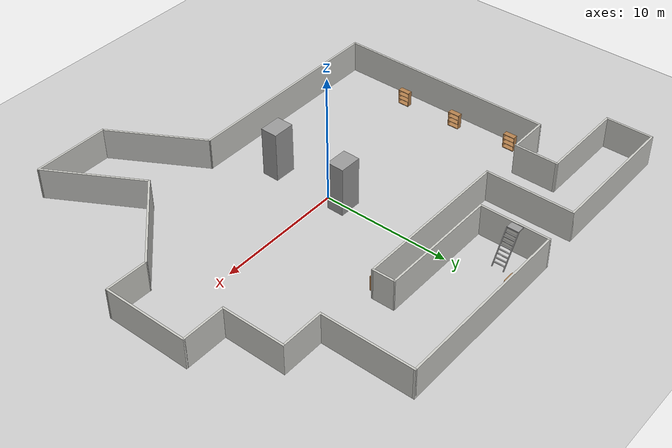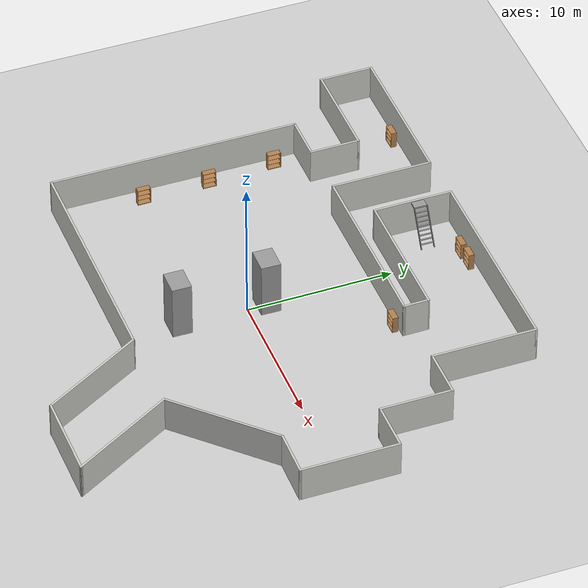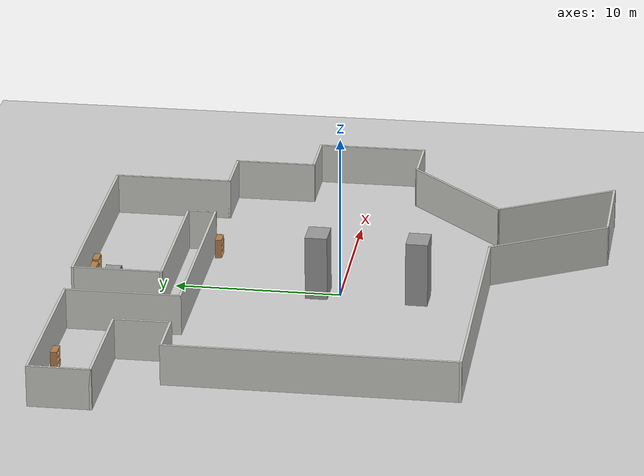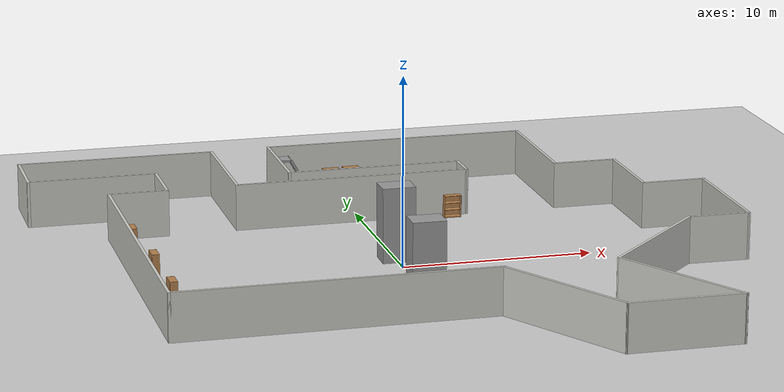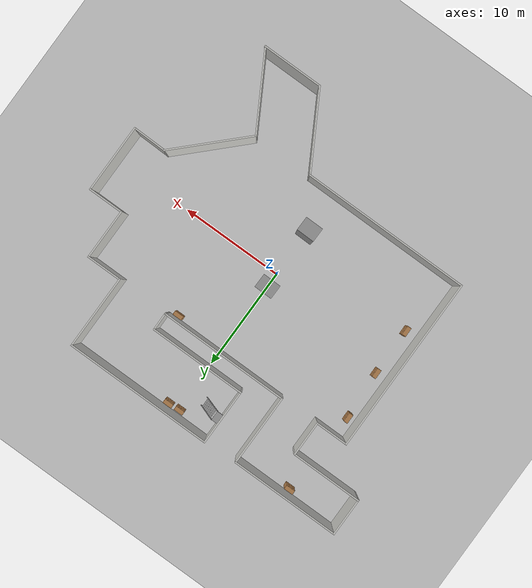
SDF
<sdf version="1.7">
 <world name="default">
  <light name="sun" type="directional">
   <pose>0 0 10 0 -0 0</pose>
   <diffuse>0.8 0.8 0.8 1</diffuse>
   <specular>0.2 0.2 0.2 1</specular>
   <attenuation>
    <range>1000</range>
    <constant>0.9</constant>
    <linear>0.01</linear>
    <quadratic>0.001</quadratic>
   </attenuation>
   <direction>-0.5 0.1 -0.9</direction>
   <spot><inner_angle>0</inner_angle><outer_angle>0</outer_angle><falloff>0</falloff></spot>
  </light>
  <model name="ground_plane">
   <static>1</static>
   <link name="link">
    <collision name="collision">
     <geometry><plane><normal>0 0 1</normal><size>100 100</size></plane></geometry>
     <surface>
      <contact><collide_bitmask>65535</collide_bitmask></contact>
      <friction><ode><mu>100</mu><mu2>50</mu2></ode></friction>
     </surface>
    </collision>
    <visual name="visual">
     <cast_shadows>0</cast_shadows>
     <geometry><plane><normal>0 0 1</normal><size>100 100</size></plane></geometry>
     <material>
      <script><uri>file://media/materials/scripts/gazebo.material</uri><name>Gazebo/Grey</name></script>
     </material>
    </visual>
   </link>
  </model>
  <gravity>0 0 -9.8</gravity>
  <magnetic_field>6e-06 2.3e-05 -4.2e-05</magnetic_field>
  <atmosphere type="adiabatic"/>
  <physics type="ode">
   <max_step_size>0.001</max_step_size>
   <real_time_factor>1</real_time_factor>
   <real_time_update_rate>1000</real_time_update_rate>
  </physics>
  <scene><ambient>0.4 0.4 0.4 1</ambient><background>0.7 0.7 0.7 1</background><shadows>1</shadows></scene>
  <spherical_coordinates>
   <surface_model>EARTH_WGS84</surface_model>
   <latitude_deg>0</latitude_deg>
   <longitude_deg>0</longitude_deg>
   <elevation>0</elevation>
   <heading_deg>0</heading_deg>
  </spherical_coordinates>
  <model name="real_room">
   <pose>0.048827 0.029436 0 0 -0 0</pose>
   <link name="Wall_38">
    <collision name="Wall_38_Collision">
     <geometry><box><size>9.5 0.15 2.5</size></box></geometry>
     <pose>0 0 1.25 0 -0 0</pose>
    </collision>
    <visual name="Wall_38_Visual">
     <pose>0 0 1.25 0 -0 0</pose>
     <geometry><box><size>9.5 0.15 2.5</size></box></geometry>
     <material>
      <script><uri>file://media/materials/scripts/gazebo.material</uri><name>Gazebo/CeilingTiled</name></script>
      <ambient>1 1 1 1</ambient>
     </material>
     <meta><layer>0</layer></meta>
    </visual>
    <pose>1.06462 10.1765 0 0 -0 3.14159</pose>
   </link>
   <link name="Wall_39">
    <collision name="Wall_39_Collision">
     <geometry><box><size>5.5 0.15 2.5</size></box></geometry>
     <pose>0 0 1.25 0 -0 0</pose>
    </collision>
    <visual name="Wall_39_Visual">
     <pose>0 0 1.25 0 -0 0</pose>
     <geometry><box><size>5.5 0.15 2.5</size></box></geometry>
     <material>
      <script><uri>file://media/materials/scripts/gazebo.material</uri><name>Gazebo/CeilingTiled</name></script>
      <ambient>1 1 1 1</ambient>
     </material>
     <meta><layer>0</layer></meta>
    </visual>
    <pose>-3.61037 12.8515 0 0 -0 1.5708</pose>
   </link>
   <link name="Wall_40">
    <collision name="Wall_40_Collision">
     <geometry><box><size>14.5 0.15 2.5</size></box></geometry>
     <pose>0 0 1.25 0 -0 0</pose>
    </collision>
    <visual name="Wall_40_Visual">
     <pose>0 0 1.25 0 -0 0</pose>
     <geometry><box><size>14.5 0.15 2.5</size></box></geometry>
     <material>
      <script><uri>file://media/materials/scripts/gazebo.material</uri><name>Gazebo/CeilingTiled</name></script>
      <ambient>1 1 1 1</ambient>
     </material>
     <meta><layer>0</layer></meta>
    </visual>
    <pose>3.56462 15.5265 0 0 -0 0</pose>
   </link>
   <link name="Wall_41">
    <collision name="Wall_41_Collision">
     <geometry><box><size>7.25 0.15 2.5</size></box></geometry>
     <pose>0 0 1.25 0 -0 0</pose>
    </collision>
    <visual name="Wall_41_Visual">
     <pose>0 0 1.25 0 -0 0</pose>
     <geometry><box><size>7.25 0.15 2.5</size></box></geometry>
     <material>
      <script><uri>file://media/materials/scripts/gazebo.material</uri><name>Gazebo/CeilingTiled</name></script>
      <ambient>1 1 1 1</ambient>
     </material>
     <meta><layer>0</layer></meta>
    </visual>
    <pose>10.7396 11.9765 0 0 -0 -1.5708</pose>
   </link>
   <link name="Wall_48">
    <collision name="Wall_48_Collision">
     <geometry><box><size>3.5 0.15 2.5</size></box></geometry>
     <pose>0 0 1.25 0 -0 0</pose>
    </collision>
    <visual name="Wall_48_Visual">
     <pose>0 0 1.25 0 -0 0</pose>
     <geometry><box><size>3.5 0.15 2.5</size></box></geometry>
     <material>
      <script><uri>file://media/materials/scripts/gazebo.material</uri><name>Gazebo/CeilingTiled</name></script>
      <ambient>1 1 1 1</ambient>
     </material>
     <meta><layer>0</layer></meta>
    </visual>
    <pose>12.4146 8.42648 0 0 -0 0</pose>
   </link>
   <link name="Wall_58">
    <collision name="Wall_58_Collision">
     <geometry><box><size>17.25 0.15 2.5</size></box></geometry>
     <pose>0 0 1.25 0 -0 0</pose>
    </collision>
    <visual name="Wall_58_Visual">
     <pose>0 0 1.25 0 -0 0</pose>
     <geometry><box><size>17.25 0.15 2.5</size></box></geometry>
     <material>
      <script><uri>file://media/materials/scripts/gazebo.material</uri><name>Gazebo/CeilingTiled</name></script>
      <ambient>1 1 1 1</ambient>
     </material>
     <meta><layer>0</layer></meta>
    </visual>
    <pose>-13.6908 -0.15073 0 0 -0 1.5708</pose>
   </link>
   <link name="Wall_64">
    <collision name="Wall_64_Collision">
     <geometry><box><size>5 0.15 2.5</size></box></geometry>
     <pose>0 0 1.25 0 -0 0</pose>
    </collision>
    <visual name="Wall_64_Visual">
     <pose>0 0 1.25 0 -0 0</pose>
     <geometry><box><size>5 0.15 2.5</size></box></geometry>
     <material>
      <script><uri>file://media/materials/scripts/gazebo.material</uri><name>Gazebo/CeilingTiled</name></script>
      <ambient>1 1 1 1</ambient>
     </material>
     <meta><layer>0</layer></meta>
    </visual>
    <pose>14.0896 6.00148 0 0 -0 -1.5708</pose>
   </link>
   <link name="Wall_65">
    <collision name="Wall_65_Collision">
     <geometry><box><size>3.5 0.15 2.5</size></box></geometry>
     <pose>0 0 1.25 0 -0 0</pose>
    </collision>
    <visual name="Wall_65_Visual">
     <pose>0 0 1.25 0 -0 0</pose>
     <geometry><box><size>3.5 0.15 2.5</size></box></geometry>
     <material>
      <script><uri>file://media/materials/scripts/gazebo.material</uri><name>Gazebo/CeilingTiled</name></script>
      <ambient>1 1 1 1</ambient>
     </material>
     <meta><layer>0</layer></meta>
    </visual>
    <pose>15.7646 3.57648 0 0 -0 0</pose>
   </link>
   <link name="Wall_66">
    <collision name="Wall_66_Collision">
     <geometry><box><size>6.75 0.15 2.5</size></box></geometry>
     <pose>0 0 1.25 0 -0 0</pose>
    </collision>
    <visual name="Wall_66_Visual">
     <pose>0 0 1.25 0 -0 0</pose>
     <geometry><box><size>6.75 0.15 2.5</size></box></geometry>
     <material>
      <script><uri>file://media/materials/scripts/gazebo.material</uri><name>Gazebo/CeilingTiled</name></script>
      <ambient>1 1 1 1</ambient>
     </material>
     <meta><layer>0</layer></meta>
    </visual>
    <pose>17.4396 0.276481 0 0 -0 -1.5708</pose>
   </link>
   <link name="Wall_74">
    <collision name="Wall_74_Collision">
     <geometry><box><size>3.25 0.15 2.5</size></box></geometry>
     <pose>0 0 1.25 0 -0 0</pose>
    </collision>
    <visual name="Wall_74_Visual">
     <pose>0 0 1.25 0 -0 0</pose>
     <geometry><box><size>3.25 0.15 2.5</size></box></geometry>
     <material>
      <script><uri>file://media/materials/scripts/gazebo.material</uri><name>Gazebo/CeilingTiled</name></script>
      <ambient>1 1 1 1</ambient>
     </material>
     <meta><layer>0</layer></meta>
    </visual>
    <pose>-12.1408 8.39927 0 0 -0 0</pose>
   </link>
   <link name="Wall_76">
    <collision name="Wall_76_Collision">
     <geometry><box><size>3.5 0.15 2.5</size></box></geometry>
     <pose>0 0 1.25 0 -0 0</pose>
    </collision>
    <visual name="Wall_76_Visual">
     <pose>0 0 1.25 0 -0 0</pose>
     <geometry><box><size>3.5 0.15 2.5</size></box></geometry>
     <material>
      <script><uri>file://media/materials/scripts/gazebo.material</uri><name>Gazebo/CeilingTiled</name></script>
      <ambient>1 1 1 1</ambient>
     </material>
     <meta><layer>0</layer></meta>
    </visual>
    <pose>-10.5908 10.0743 0 0 -0 1.5708</pose>
   </link>
   <link name="Wall_77">
    <collision name="Wall_77_Collision">
     <geometry><box><size>7 0.15 2.5</size></box></geometry>
     <pose>0 0 1.25 0 -0 0</pose>
    </collision>
    <visual name="Wall_77_Visual">
     <pose>0 0 1.25 0 -0 0</pose>
     <geometry><box><size>7 0.15 2.5</size></box></geometry>
     <material>
      <script><uri>file://media/materials/scripts/gazebo.material</uri><name>Gazebo/CeilingTiled</name></script>
      <ambient>1 1 1 1</ambient>
     </material>
     <meta><layer>0</layer></meta>
    </visual>
    <pose>-14.0158 11.7493 0 0 -0 3.14159</pose>
   </link>
   <link name="Wall_78">
    <collision name="Wall_78_Collision">
     <geometry><box><size>3.75 0.15 2.5</size></box></geometry>
     <pose>0 0 1.25 0 -0 0</pose>
    </collision>
    <visual name="Wall_78_Visual">
     <pose>0 0 1.25 0 -0 0</pose>
     <geometry><box><size>3.75 0.15 2.5</size></box></geometry>
     <material>
      <script><uri>file://media/materials/scripts/gazebo.material</uri><name>Gazebo/CeilingTiled</name></script>
      <ambient>1 1 1 1</ambient>
     </material>
     <meta><layer>0</layer></meta>
    </visual>
    <pose>-17.4408 13.5493 0 0 -0 1.5708</pose>
   </link>
   <link name="Wall_79">
    <collision name="Wall_79_Collision">
     <geometry><box><size>10.75 0.15 2.5</size></box></geometry>
     <pose>0 0 1.25 0 -0 0</pose>
    </collision>
    <visual name="Wall_79_Visual">
     <pose>0 0 1.25 0 -0 0</pose>
     <geometry><box><size>10.75 0.15 2.5</size></box></geometry>
     <material>
      <script><uri>file://media/materials/scripts/gazebo.material</uri><name>Gazebo/CeilingTiled</name></script>
      <ambient>1 1 1 1</ambient>
     </material>
     <meta><layer>0</layer></meta>
    </visual>
    <pose>-12.1408 15.3493 0 0 -0 0</pose>
   </link>
   <link name="Wall_80">
    <collision name="Wall_80_Collision">
     <geometry><box><size>7 0.15 2.5</size></box></geometry>
     <pose>0 0 1.25 0 -0 0</pose>
    </collision>
    <visual name="Wall_80_Visual">
     <pose>0 0 1.25 0 -0 0</pose>
     <geometry><box><size>7 0.15 2.5</size></box></geometry>
     <material>
      <script><uri>file://media/materials/scripts/gazebo.material</uri><name>Gazebo/CeilingTiled</name></script>
      <ambient>1 1 1 1</ambient>
     </material>
     <meta><layer>0</layer></meta>
    </visual>
    <pose>-6.84079 11.9243 0 0 -0 -1.5708</pose>
   </link>
   <link name="Wall_83">
    <collision name="Wall_83_Collision">
     <geometry><box><size>12.75 0.15 2.5</size></box></geometry>
     <pose>0 0 1.25 0 -0 0</pose>
    </collision>
    <visual name="Wall_83_Visual">
     <pose>0 0 1.25 0 -0 0</pose>
     <geometry><box><size>12.75 0.15 2.5</size></box></geometry>
     <material>
      <script><uri>file://media/materials/scripts/gazebo.material</uri><name>Gazebo/CeilingTiled</name></script>
      <ambient>1 1 1 1</ambient>
     </material>
     <meta><layer>0</layer></meta>
    </visual>
    <pose>-0.540794 8.49927 0 0 -0 0</pose>
   </link>
   <link name="Wall_85">
    <collision name="Wall_85_Collision">
     <geometry><box><size>1.82733 0.15 2.5</size></box></geometry>
     <pose>0 0 1.25 0 -0 0</pose>
    </collision>
    <visual name="Wall_85_Visual">
     <pose>0 0 1.25 0 -0 0</pose>
     <geometry><box><size>1.82733 0.15 2.5</size></box></geometry>
     <material>
      <script><uri>file://media/materials/scripts/gazebo.material</uri><name>Gazebo/CeilingTiled</name></script>
      <ambient>1 1 1 1</ambient>
     </material>
     <meta><layer>0</layer></meta>
    </visual>
    <pose>5.74942 9.33788 0 0 -0 -1.55912</pose>
   </link>
   <link name="Wall_87">
    <collision name="Wall_87_Collision">
     <geometry><box><size>16.5 0.15 2.5</size></box></geometry>
     <pose>0 0 1.25 0 -0 0</pose>
    </collision>
    <visual name="Wall_87_Visual">
     <pose>0 0 1.25 0 -0 0</pose>
     <geometry><box><size>16.5 0.15 2.5</size></box></geometry>
     <material>
      <script><uri>file://media/materials/scripts/gazebo.material</uri><name>Gazebo/CeilingTiled</name></script>
      <ambient>1 1 1 1</ambient>
     </material>
     <meta><layer>0</layer></meta>
    </visual>
    <pose>-5.51579 -8.70073 0 0 -0 0</pose>
   </link>
   <link name="Wall_88">
    <collision name="Wall_88_Collision">
     <geometry><box><size>8 0.15 2.5</size></box></geometry>
     <pose>0 0 1.25 0 -0 0</pose>
    </collision>
    <visual name="Wall_88_Visual">
     <pose>0 0 1.25 0 -0 0</pose>
     <geometry><box><size>8 0.15 2.5</size></box></geometry>
     <material>
      <script><uri>file://media/materials/scripts/gazebo.material</uri><name>Gazebo/CeilingTiled</name></script>
      <ambient>1 1 1 1</ambient>
     </material>
     <meta><layer>0</layer></meta>
    </visual>
    <pose>4.62171 -12.0999 0 0 -0 -1.0472</pose>
   </link>
   <link name="Wall_89">
    <collision name="Wall_89_Collision">
     <geometry><box><size>6 0.15 2.5</size></box></geometry>
     <pose>0 0 1.25 0 -0 0</pose>
    </collision>
    <visual name="Wall_89_Visual">
     <pose>0 0 1.25 0 -0 0</pose>
     <geometry><box><size>6 0.15 2.5</size></box></geometry>
     <material>
      <script><uri>file://media/materials/scripts/gazebo.material</uri><name>Gazebo/CeilingTiled</name></script>
      <ambient>1 1 1 1</ambient>
     </material>
     <meta><layer>0</layer></meta>
    </visual>
    <pose>9.50921 -15.499 0 0 -0 0</pose>
   </link>
   <link name="Wall_90">
    <collision name="Wall_90_Collision">
     <geometry><box><size>8 0.15 2.5</size></box></geometry>
     <pose>0 0 1.25 0 -0 0</pose>
    </collision>
    <visual name="Wall_90_Visual">
     <pose>0 0 1.25 0 -0 0</pose>
     <geometry><box><size>8 0.15 2.5</size></box></geometry>
     <material>
      <script><uri>file://media/materials/scripts/gazebo.material</uri><name>Gazebo/CeilingTiled</name></script>
      <ambient>1 1 1 1</ambient>
     </material>
     <meta><layer>0</layer></meta>
    </visual>
    <pose>10.4717 -12.0999 0 0 -0 2.0944</pose>
   </link>
   <link name="Wall_91">
    <collision name="Wall_91_Collision">
     <geometry><box><size>8.25 0.15 2.5</size></box></geometry>
     <pose>0 0 1.25 0 -0 0</pose>
    </collision>
    <visual name="Wall_91_Visual">
     <pose>0 0 1.25 0 -0 0</pose>
     <geometry><box><size>8.25 0.15 2.5</size></box></geometry>
     <material>
      <script><uri>file://media/materials/scripts/gazebo.material</uri><name>Gazebo/CeilingTiled</name></script>
      <ambient>1 1 1 1</ambient>
     </material>
     <meta><layer>0</layer></meta>
    </visual>
    <pose>11.373 -5.83695 0 0 -0 0.785398</pose>
   </link>
   <link name="Wall_93">
    <collision name="Wall_93_Collision">
     <geometry><box><size>3.35325 0.15 2.5</size></box></geometry>
     <pose>0 0 1.25 0 -0 0</pose>
    </collision>
    <visual name="Wall_93_Visual">
     <pose>0 0 1.25 0 -0 0</pose>
     <geometry><box><size>3.35325 0.15 2.5</size></box></geometry>
     <material>
      <script><uri>file://media/materials/scripts/gazebo.material</uri><name>Gazebo/CeilingTiled</name></script>
      <ambient>1 1 1 1</ambient>
     </material>
     <meta><layer>0</layer></meta>
    </visual>
    <pose>15.8382 -2.99834 0 0 -0 3.12587</pose>
   </link>
   <static>1</static>
  </model>
  <light name="sun_clone" type="directional">
   <pose>-0.020435 0.002016 10 0 -0 0</pose>
   <diffuse>0.8 0.8 0.8 1</diffuse>
   <specular>0.2 0.2 0.2 1</specular>
   <direction>-0.483368 0.096674 -0.870063</direction>
   <attenuation>
    <range>1000</range>
    <constant>0.9</constant>
    <linear>0.01</linear>
    <quadratic>0.001</quadratic>
   </attenuation>
  </light>
  <model name="unit_box">
   <pose>0.007916 1.34119 2.01488 -0.004416 -0.004416 -0.012269</pose>
   <link name="link">
    <inertial>
     <mass>1</mass>
     <inertia>
      <ixx>0.166667</ixx>
      <ixy>0</ixy>
      <ixz>0</ixz>
      <iyy>0.166667</iyy>
      <iyz>0</iyz>
      <izz>0.166667</izz>
     </inertia>
    </inertial>
    <collision name="collision"><geometry><box><size>1.72731 1.33391 3.9579</size></box></geometry></collision>
    <visual name="visual">
     <geometry><box><size>1.72731 1.33391 3.9579</size></box></geometry>
     <material>
      <script><name>Gazebo/Grey</name><uri>file://media/materials/scripts/gazebo.material</uri></script>
     </material>
    </visual>
   </link>
  </model>
  <model name="unit_box_clone">
   <pose>-0.056306 -4.68959 1.97895 0 -1e-06 -0.012447</pose>
   <link name="link">
    <inertial>
     <mass>1</mass>
     <inertia>
      <ixx>0.166667</ixx>
      <ixy>0</ixy>
      <ixz>0</ixz>
      <iyy>0.166667</iyy>
      <iyz>0</iyz>
      <izz>0.166667</izz>
     </inertia>
    </inertial>
    <collision name="collision"><geometry><box><size>1.72731 1.33391 3.9579</size></box></geometry></collision>
    <visual name="visual">
     <geometry><box><size>1.72731 1.33391 3.9579</size></box></geometry>
     <material>
      <script><name>Gazebo/Grey</name><uri>file://media/materials/scripts/gazebo.material</uri></script>
     </material>
    </visual>
   </link>
  </model>
  <model name="bookshelf">
   <static>1</static>
   <link name="link">
    <inertial><mass>1</mass></inertial>
    <collision name="back">
     <pose>0 0.005 0.6 0 -0 0</pose>
     <geometry><box><size>0.9 0.01 1.2</size></box></geometry>
    </collision>
    <visual name="visual1">
     <pose>0 0.005 0.6 0 -0 0</pose>
     <geometry><box><size>0.9 0.01 1.2</size></box></geometry>
     <material>
      <script><uri>file://media/materials/scripts/gazebo.material</uri><name>Gazebo/Wood</name></script>
     </material>
    </visual>
    <collision name="left_side">
     <pose>0.45 -0.195 0.6 0 -0 0</pose>
     <geometry><box><size>0.02 0.4 1.2</size></box></geometry>
    </collision>
    <visual name="visual2">
     <pose>0.45 -0.195 0.6 0 -0 0</pose>
     <geometry><box><size>0.02 0.4 1.2</size></box></geometry>
     <material>
      <script><uri>file://media/materials/scripts/gazebo.material</uri><name>Gazebo/Wood</name></script>
     </material>
    </visual>
    <collision name="right_side">
     <pose>-0.45 -0.195 0.6 0 -0 0</pose>
     <geometry><box><size>0.02 0.4 1.2</size></box></geometry>
    </collision>
    <visual name="visual3">
     <pose>-0.45 -0.195 0.6 0 -0 0</pose>
     <geometry><box><size>0.02 0.4 1.2</size></box></geometry>
     <material>
      <script><uri>file://media/materials/scripts/gazebo.material</uri><name>Gazebo/Wood</name></script>
     </material>
    </visual>
    <collision name="bottom">
     <pose>0 -0.195 0.03 0 -0 0</pose>
     <geometry><box><size>0.88 0.4 0.06</size></box></geometry>
    </collision>
    <visual name="visual4">
     <pose>0 -0.195 0.03 0 -0 0</pose>
     <geometry><box><size>0.88 0.4 0.06</size></box></geometry>
     <material>
      <script><uri>file://media/materials/scripts/gazebo.material</uri><name>Gazebo/Wood</name></script>
     </material>
    </visual>
    <collision name="top">
     <pose>0 -0.195 1.19 0 -0 0</pose>
     <geometry><box><size>0.88 0.4 0.02</size></box></geometry>
    </collision>
    <visual name="visual5">
     <pose>0 -0.195 1.19 0 -0 0</pose>
     <geometry><box><size>0.88 0.4 0.02</size></box></geometry>
     <material>
      <script><uri>file://media/materials/scripts/gazebo.material</uri><name>Gazebo/Wood</name></script>
     </material>
    </visual>
    <collision name="low_shelf">
     <pose>0 -0.195 0.43 0 -0 0</pose>
     <geometry><box><size>0.88 0.4 0.02</size></box></geometry>
    </collision>
    <visual name="visual6">
     <pose>0 -0.195 0.43 0 -0 0</pose>
     <geometry><box><size>0.88 0.4 0.02</size></box></geometry>
     <material>
      <script><uri>file://media/materials/scripts/gazebo.material</uri><name>Gazebo/Wood</name></script>
     </material>
    </visual>
    <collision name="high_shelf">
     <pose>0 -0.195 0.8 0 -0 0</pose>
     <geometry><box><size>0.88 0.4 0.02</size></box></geometry>
    </collision>
    <visual name="visual7">
     <pose>0 -0.195 0.8 0 -0 0</pose>
     <geometry><box><size>0.88 0.4 0.02</size></box></geometry>
     <material>
      <script><uri>file://media/materials/scripts/gazebo.material</uri><name>Gazebo/Wood</name></script>
     </material>
    </visual>
   </link>
   <pose>4.91513 8.33021 0 0 -0 0</pose>
  </model>
  <model name="bookshelf_0">
   <static>1</static>
   <link name="link">
    <inertial><mass>1</mass></inertial>
    <collision name="back">
     <pose>0 0.005 0.6 0 -0 0</pose>
     <geometry><box><size>0.9 0.01 1.2</size></box></geometry>
    </collision>
    <visual name="visual1">
     <pose>0 0.005 0.6 0 -0 0</pose>
     <geometry><box><size>0.9 0.01 1.2</size></box></geometry>
     <material>
      <script><uri>file://media/materials/scripts/gazebo.material</uri><name>Gazebo/Wood</name></script>
     </material>
    </visual>
    <collision name="left_side">
     <pose>0.45 -0.195 0.6 0 -0 0</pose>
     <geometry><box><size>0.02 0.4 1.2</size></box></geometry>
    </collision>
    <visual name="visual2">
     <pose>0.45 -0.195 0.6 0 -0 0</pose>
     <geometry><box><size>0.02 0.4 1.2</size></box></geometry>
     <material>
      <script><uri>file://media/materials/scripts/gazebo.material</uri><name>Gazebo/Wood</name></script>
     </material>
    </visual>
    <collision name="right_side">
     <pose>-0.45 -0.195 0.6 0 -0 0</pose>
     <geometry><box><size>0.02 0.4 1.2</size></box></geometry>
    </collision>
    <visual name="visual3">
     <pose>-0.45 -0.195 0.6 0 -0 0</pose>
     <geometry><box><size>0.02 0.4 1.2</size></box></geometry>
     <material>
      <script><uri>file://media/materials/scripts/gazebo.material</uri><name>Gazebo/Wood</name></script>
     </material>
    </visual>
    <collision name="bottom">
     <pose>0 -0.195 0.03 0 -0 0</pose>
     <geometry><box><size>0.88 0.4 0.06</size></box></geometry>
    </collision>
    <visual name="visual4">
     <pose>0 -0.195 0.03 0 -0 0</pose>
     <geometry><box><size>0.88 0.4 0.06</size></box></geometry>
     <material>
      <script><uri>file://media/materials/scripts/gazebo.material</uri><name>Gazebo/Wood</name></script>
     </material>
    </visual>
    <collision name="top">
     <pose>0 -0.195 1.19 0 -0 0</pose>
     <geometry><box><size>0.88 0.4 0.02</size></box></geometry>
    </collision>
    <visual name="visual5">
     <pose>0 -0.195 1.19 0 -0 0</pose>
     <geometry><box><size>0.88 0.4 0.02</size></box></geometry>
     <material>
      <script><uri>file://media/materials/scripts/gazebo.material</uri><name>Gazebo/Wood</name></script>
     </material>
    </visual>
    <collision name="low_shelf">
     <pose>0 -0.195 0.43 0 -0 0</pose>
     <geometry><box><size>0.88 0.4 0.02</size></box></geometry>
    </collision>
    <visual name="visual6">
     <pose>0 -0.195 0.43 0 -0 0</pose>
     <geometry><box><size>0.88 0.4 0.02</size></box></geometry>
     <material>
      <script><uri>file://media/materials/scripts/gazebo.material</uri><name>Gazebo/Wood</name></script>
     </material>
    </visual>
    <collision name="high_shelf">
     <pose>0 -0.195 0.8 0 -0 0</pose>
     <geometry><box><size>0.88 0.4 0.02</size></box></geometry>
    </collision>
    <visual name="visual7">
     <pose>0 -0.195 0.8 0 -0 0</pose>
     <geometry><box><size>0.88 0.4 0.02</size></box></geometry>
     <material>
      <script><uri>file://media/materials/scripts/gazebo.material</uri><name>Gazebo/Wood</name></script>
     </material>
    </visual>
   </link>
   <pose>-12.646 1.89048 0 0 -0 1.57604</pose>
  </model>
  <model name="bookshelf_0_clone">
   <static>1</static>
   <link name="link">
    <inertial><mass>1</mass></inertial>
    <collision name="back">
     <pose>0 0.005 0.6 0 -0 0</pose>
     <geometry><box><size>0.9 0.01 1.2</size></box></geometry>
    </collision>
    <visual name="visual1">
     <pose>0 0.005 0.6 0 -0 0</pose>
     <geometry><box><size>0.9 0.01 1.2</size></box></geometry>
     <material>
      <script><uri>file://media/materials/scripts/gazebo.material</uri><name>Gazebo/Wood</name></script>
     </material>
    </visual>
    <collision name="left_side">
     <pose>0.45 -0.195 0.6 0 -0 0</pose>
     <geometry><box><size>0.02 0.4 1.2</size></box></geometry>
    </collision>
    <visual name="visual2">
     <pose>0.45 -0.195 0.6 0 -0 0</pose>
     <geometry><box><size>0.02 0.4 1.2</size></box></geometry>
     <material>
      <script><uri>file://media/materials/scripts/gazebo.material</uri><name>Gazebo/Wood</name></script>
     </material>
    </visual>
    <collision name="right_side">
     <pose>-0.45 -0.195 0.6 0 -0 0</pose>
     <geometry><box><size>0.02 0.4 1.2</size></box></geometry>
    </collision>
    <visual name="visual3">
     <pose>-0.45 -0.195 0.6 0 -0 0</pose>
     <geometry><box><size>0.02 0.4 1.2</size></box></geometry>
     <material>
      <script><uri>file://media/materials/scripts/gazebo.material</uri><name>Gazebo/Wood</name></script>
     </material>
    </visual>
    <collision name="bottom">
     <pose>0 -0.195 0.03 0 -0 0</pose>
     <geometry><box><size>0.88 0.4 0.06</size></box></geometry>
    </collision>
    <visual name="visual4">
     <pose>0 -0.195 0.03 0 -0 0</pose>
     <geometry><box><size>0.88 0.4 0.06</size></box></geometry>
     <material>
      <script><uri>file://media/materials/scripts/gazebo.material</uri><name>Gazebo/Wood</name></script>
     </material>
    </visual>
    <collision name="top">
     <pose>0 -0.195 1.19 0 -0 0</pose>
     <geometry><box><size>0.88 0.4 0.02</size></box></geometry>
    </collision>
    <visual name="visual5">
     <pose>0 -0.195 1.19 0 -0 0</pose>
     <geometry><box><size>0.88 0.4 0.02</size></box></geometry>
     <material>
      <script><uri>file://media/materials/scripts/gazebo.material</uri><name>Gazebo/Wood</name></script>
     </material>
    </visual>
    <collision name="low_shelf">
     <pose>0 -0.195 0.43 0 -0 0</pose>
     <geometry><box><size>0.88 0.4 0.02</size></box></geometry>
    </collision>
    <visual name="visual6">
     <pose>0 -0.195 0.43 0 -0 0</pose>
     <geometry><box><size>0.88 0.4 0.02</size></box></geometry>
     <material>
      <script><uri>file://media/materials/scripts/gazebo.material</uri><name>Gazebo/Wood</name></script>
     </material>
    </visual>
    <collision name="high_shelf">
     <pose>0 -0.195 0.8 0 -0 0</pose>
     <geometry><box><size>0.88 0.4 0.02</size></box></geometry>
    </collision>
    <visual name="visual7">
     <pose>0 -0.195 0.8 0 -0 0</pose>
     <geometry><box><size>0.88 0.4 0.02</size></box></geometry>
     <material>
      <script><uri>file://media/materials/scripts/gazebo.material</uri><name>Gazebo/Wood</name></script>
     </material>
    </visual>
   </link>
   <pose>-12.5909 -2.73035 0 0 -0 1.57604</pose>
  </model>
  <model name="bookshelf_0_clone_0">
   <static>1</static>
   <link name="link">
    <inertial><mass>1</mass></inertial>
    <collision name="back">
     <pose>0 0.005 0.6 0 -0 0</pose>
     <geometry><box><size>0.9 0.01 1.2</size></box></geometry>
    </collision>
    <visual name="visual1">
     <pose>0 0.005 0.6 0 -0 0</pose>
     <geometry><box><size>0.9 0.01 1.2</size></box></geometry>
     <material>
      <script><uri>file://media/materials/scripts/gazebo.material</uri><name>Gazebo/Wood</name></script>
     </material>
    </visual>
    <collision name="left_side">
     <pose>0.45 -0.195 0.6 0 -0 0</pose>
     <geometry><box><size>0.02 0.4 1.2</size></box></geometry>
    </collision>
    <visual name="visual2">
     <pose>0.45 -0.195 0.6 0 -0 0</pose>
     <geometry><box><size>0.02 0.4 1.2</size></box></geometry>
     <material>
      <script><uri>file://media/materials/scripts/gazebo.material</uri><name>Gazebo/Wood</name></script>
     </material>
    </visual>
    <collision name="right_side">
     <pose>-0.45 -0.195 0.6 0 -0 0</pose>
     <geometry><box><size>0.02 0.4 1.2</size></box></geometry>
    </collision>
    <visual name="visual3">
     <pose>-0.45 -0.195 0.6 0 -0 0</pose>
     <geometry><box><size>0.02 0.4 1.2</size></box></geometry>
     <material>
      <script><uri>file://media/materials/scripts/gazebo.material</uri><name>Gazebo/Wood</name></script>
     </material>
    </visual>
    <collision name="bottom">
     <pose>0 -0.195 0.03 0 -0 0</pose>
     <geometry><box><size>0.88 0.4 0.06</size></box></geometry>
    </collision>
    <visual name="visual4">
     <pose>0 -0.195 0.03 0 -0 0</pose>
     <geometry><box><size>0.88 0.4 0.06</size></box></geometry>
     <material>
      <script><uri>file://media/materials/scripts/gazebo.material</uri><name>Gazebo/Wood</name></script>
     </material>
    </visual>
    <collision name="top">
     <pose>0 -0.195 1.19 0 -0 0</pose>
     <geometry><box><size>0.88 0.4 0.02</size></box></geometry>
    </collision>
    <visual name="visual5">
     <pose>0 -0.195 1.19 0 -0 0</pose>
     <geometry><box><size>0.88 0.4 0.02</size></box></geometry>
     <material>
      <script><uri>file://media/materials/scripts/gazebo.material</uri><name>Gazebo/Wood</name></script>
     </material>
    </visual>
    <collision name="low_shelf">
     <pose>0 -0.195 0.43 0 -0 0</pose>
     <geometry><box><size>0.88 0.4 0.02</size></box></geometry>
    </collision>
    <visual name="visual6">
     <pose>0 -0.195 0.43 0 -0 0</pose>
     <geometry><box><size>0.88 0.4 0.02</size></box></geometry>
     <material>
      <script><uri>file://media/materials/scripts/gazebo.material</uri><name>Gazebo/Wood</name></script>
     </material>
    </visual>
    <collision name="high_shelf">
     <pose>0 -0.195 0.8 0 -0 0</pose>
     <geometry><box><size>0.88 0.4 0.02</size></box></geometry>
    </collision>
    <visual name="visual7">
     <pose>0 -0.195 0.8 0 -0 0</pose>
     <geometry><box><size>0.88 0.4 0.02</size></box></geometry>
     <material>
      <script><uri>file://media/materials/scripts/gazebo.material</uri><name>Gazebo/Wood</name></script>
     </material>
    </visual>
   </link>
   <pose>-12.9575 6.59165 0 0 -0 1.57604</pose>
  </model>
  <model name="bookshelf_0_clone_1">
   <static>1</static>
   <link name="link">
    <inertial><mass>1</mass></inertial>
    <collision name="back">
     <pose>0 0.005 0.6 0 -0 0</pose>
     <geometry><box><size>0.9 0.01 1.2</size></box></geometry>
    </collision>
    <visual name="visual1">
     <pose>0 0.005 0.6 0 -0 0</pose>
     <geometry><box><size>0.9 0.01 1.2</size></box></geometry>
     <material>
      <script><uri>file://media/materials/scripts/gazebo.material</uri><name>Gazebo/Wood</name></script>
     </material>
    </visual>
    <collision name="left_side">
     <pose>0.45 -0.195 0.6 0 -0 0</pose>
     <geometry><box><size>0.02 0.4 1.2</size></box></geometry>
    </collision>
    <visual name="visual2">
     <pose>0.45 -0.195 0.6 0 -0 0</pose>
     <geometry><box><size>0.02 0.4 1.2</size></box></geometry>
     <material>
      <script><uri>file://media/materials/scripts/gazebo.material</uri><name>Gazebo/Wood</name></script>
     </material>
    </visual>
    <collision name="right_side">
     <pose>-0.45 -0.195 0.6 0 -0 0</pose>
     <geometry><box><size>0.02 0.4 1.2</size></box></geometry>
    </collision>
    <visual name="visual3">
     <pose>-0.45 -0.195 0.6 0 -0 0</pose>
     <geometry><box><size>0.02 0.4 1.2</size></box></geometry>
     <material>
      <script><uri>file://media/materials/scripts/gazebo.material</uri><name>Gazebo/Wood</name></script>
     </material>
    </visual>
    <collision name="bottom">
     <pose>0 -0.195 0.03 0 -0 0</pose>
     <geometry><box><size>0.88 0.4 0.06</size></box></geometry>
    </collision>
    <visual name="visual4">
     <pose>0 -0.195 0.03 0 -0 0</pose>
     <geometry><box><size>0.88 0.4 0.06</size></box></geometry>
     <material>
      <script><uri>file://media/materials/scripts/gazebo.material</uri><name>Gazebo/Wood</name></script>
     </material>
    </visual>
    <collision name="top">
     <pose>0 -0.195 1.19 0 -0 0</pose>
     <geometry><box><size>0.88 0.4 0.02</size></box></geometry>
    </collision>
    <visual name="visual5">
     <pose>0 -0.195 1.19 0 -0 0</pose>
     <geometry><box><size>0.88 0.4 0.02</size></box></geometry>
     <material>
      <script><uri>file://media/materials/scripts/gazebo.material</uri><name>Gazebo/Wood</name></script>
     </material>
    </visual>
    <collision name="low_shelf">
     <pose>0 -0.195 0.43 0 -0 0</pose>
     <geometry><box><size>0.88 0.4 0.02</size></box></geometry>
    </collision>
    <visual name="visual6">
     <pose>0 -0.195 0.43 0 -0 0</pose>
     <geometry><box><size>0.88 0.4 0.02</size></box></geometry>
     <material>
      <script><uri>file://media/materials/scripts/gazebo.material</uri><name>Gazebo/Wood</name></script>
     </material>
    </visual>
    <collision name="high_shelf">
     <pose>0 -0.195 0.8 0 -0 0</pose>
     <geometry><box><size>0.88 0.4 0.02</size></box></geometry>
    </collision>
    <visual name="visual7">
     <pose>0 -0.195 0.8 0 -0 0</pose>
     <geometry><box><size>0.88 0.4 0.02</size></box></geometry>
     <material>
      <script><uri>file://media/materials/scripts/gazebo.material</uri><name>Gazebo/Wood</name></script>
     </material>
    </visual>
   </link>
   <pose>-12.2763 15.0501 0 0 -0 0.005241</pose>
  </model>
  <model name="ladder_60deg_0rails">
   <static>1</static>
   <link name="step0">
    <pose>0 0.15396 0.266667 0 -0 0</pose>
    <inertial>
     <mass>9.75482</mass>
     <inertia>
      <ixx>0.00957124</ixx>
      <iyy>0.65963</iyy>
      <izz>0.666842</izz>
      <ixy>0</ixy>
      <ixz>0</ixz>
      <iyz>0</iyz>
     </inertia>
    </inertial>
    <collision name="collision"><geometry><box><size>0.9 0.1016 0.0381</size></box></geometry></collision>
    <visual name="visual">
     <geometry><box><size>0.9 0.1016 0.0381</size></box></geometry>
     <material>
      <script><uri>file://media/materials/scripts/gazebo.material</uri><name>Gazebo/Grey</name></script>
     </material>
    </visual>
   </link>
   <link name="step1">
    <pose>0 0.30792 0.533333 0 -0 0</pose>
    <inertial>
     <mass>9.75482</mass>
     <inertia>
      <ixx>0.00957124</ixx>
      <iyy>0.65963</iyy>
      <izz>0.666842</izz>
      <ixy>0</ixy>
      <ixz>0</ixz>
      <iyz>0</iyz>
     </inertia>
    </inertial>
    <collision name="collision"><geometry><box><size>0.9 0.1016 0.0381</size></box></geometry></collision>
    <visual name="visual">
     <geometry><box><size>0.9 0.1016 0.0381</size></box></geometry>
     <material>
      <script><uri>file://media/materials/scripts/gazebo.material</uri><name>Gazebo/Grey</name></script>
     </material>
    </visual>
   </link>
   <link name="step2">
    <pose>0 0.46188 0.8 0 -0 0</pose>
    <inertial>
     <mass>9.75482</mass>
     <inertia>
      <ixx>0.00957124</ixx>
      <iyy>0.65963</iyy>
      <izz>0.666842</izz>
      <ixy>0</ixy>
      <ixz>0</ixz>
      <iyz>0</iyz>
     </inertia>
    </inertial>
    <collision name="collision"><geometry><box><size>0.9 0.1016 0.0381</size></box></geometry></collision>
    <visual name="visual">
     <geometry><box><size>0.9 0.1016 0.0381</size></box></geometry>
     <material>
      <script><uri>file://media/materials/scripts/gazebo.material</uri><name>Gazebo/Grey</name></script>
     </material>
    </visual>
   </link>
   <link name="step3">
    <pose>0 0.61584 1.06667 0 -0 0</pose>
    <inertial>
     <mass>9.75482</mass>
     <inertia>
      <ixx>0.00957124</ixx>
      <iyy>0.65963</iyy>
      <izz>0.666842</izz>
      <ixy>0</ixy>
      <ixz>0</ixz>
      <iyz>0</iyz>
     </inertia>
    </inertial>
    <collision name="collision"><geometry><box><size>0.9 0.1016 0.0381</size></box></geometry></collision>
    <visual name="visual">
     <geometry><box><size>0.9 0.1016 0.0381</size></box></geometry>
     <material>
      <script><uri>file://media/materials/scripts/gazebo.material</uri><name>Gazebo/Grey</name></script>
     </material>
    </visual>
   </link>
   <link name="step4">
    <pose>0 0.7698 1.33333 0 -0 0</pose>
    <inertial>
     <mass>9.75482</mass>
     <inertia>
      <ixx>0.00957124</ixx>
      <iyy>0.65963</iyy>
      <izz>0.666842</izz>
      <ixy>0</ixy>
      <ixz>0</ixz>
      <iyz>0</iyz>
     </inertia>
    </inertial>
    <collision name="collision"><geometry><box><size>0.9 0.1016 0.0381</size></box></geometry></collision>
    <visual name="visual">
     <geometry><box><size>0.9 0.1016 0.0381</size></box></geometry>
     <material>
      <script><uri>file://media/materials/scripts/gazebo.material</uri><name>Gazebo/Grey</name></script>
     </material>
    </visual>
   </link>
   <link name="step5">
    <pose>0 0.92376 1.6 0 -0 0</pose>
    <inertial>
     <mass>9.75482</mass>
     <inertia>
      <ixx>0.00957124</ixx>
      <iyy>0.65963</iyy>
      <izz>0.666842</izz>
      <ixy>0</ixy>
      <ixz>0</ixz>
      <iyz>0</iyz>
     </inertia>
    </inertial>
    <collision name="collision"><geometry><box><size>0.9 0.1016 0.0381</size></box></geometry></collision>
    <visual name="visual">
     <geometry><box><size>0.9 0.1016 0.0381</size></box></geometry>
     <material>
      <script><uri>file://media/materials/scripts/gazebo.material</uri><name>Gazebo/Grey</name></script>
     </material>
    </visual>
   </link>
   <link name="step6">
    <pose>0 1.07772 1.86667 0 -0 0</pose>
    <inertial>
     <mass>9.75482</mass>
     <inertia>
      <ixx>0.00957124</ixx>
      <iyy>0.65963</iyy>
      <izz>0.666842</izz>
      <ixy>0</ixy>
      <ixz>0</ixz>
      <iyz>0</iyz>
     </inertia>
    </inertial>
    <collision name="collision"><geometry><box><size>0.9 0.1016 0.0381</size></box></geometry></collision>
    <visual name="visual">
     <geometry><box><size>0.9 0.1016 0.0381</size></box></geometry>
     <material>
      <script><uri>file://media/materials/scripts/gazebo.material</uri><name>Gazebo/Grey</name></script>
     </material>
    </visual>
   </link>
   <link name="step7">
    <pose>0 1.23168 2.13333 0 -0 0</pose>
    <inertial>
     <mass>9.75482</mass>
     <inertia>
      <ixx>0.00957124</ixx>
      <iyy>0.65963</iyy>
      <izz>0.666842</izz>
      <ixy>0</ixy>
      <ixz>0</ixz>
      <iyz>0</iyz>
     </inertia>
    </inertial>
    <collision name="collision"><geometry><box><size>0.9 0.1016 0.0381</size></box></geometry></collision>
    <visual name="visual">
     <geometry><box><size>0.9 0.1016 0.0381</size></box></geometry>
     <material>
      <script><uri>file://media/materials/scripts/gazebo.material</uri><name>Gazebo/Grey</name></script>
     </material>
    </visual>
   </link>
   <link name="landing">
    <pose>0 1.68564 2.4 0 -0 0</pose>
    <inertial>
     <mass>57.6072</mass>
     <inertia><ixx>1.73518</ixx><iyy>3.89545</iyy><izz>5.6167</izz><ixy>0</ixy><ixz>0</ixz><iyz>0</iyz></inertia>
    </inertial>
    <collision name="collision"><geometry><box><size>0.9 0.6 0.1016</size></box></geometry></collision>
    <visual name="visual">
     <geometry><box><size>0.9 0.6 0.1016</size></box></geometry>
     <material>
      <script><uri>file://media/materials/scripts/gazebo.material</uri><name>Gazebo/Grey</name></script>
     </material>
    </visual>
   </link>
   <link name="left_side_wall">
    <pose>-0.45 0.69282 1.2 1.0472 -0 0</pose>
    <collision name="collision"><geometry><box><size>0.0508 2.85128 0.13</size></box></geometry></collision>
    <visual name="visual">
     <geometry><box><size>0.0508 2.85128 0.13</size></box></geometry>
     <material>
      <script><uri>file://media/materials/scripts/gazebo.material</uri><name>Gazebo/Grey</name></script>
     </material>
    </visual>
   </link>
   <link name="right_side_wall">
    <pose>0.45 0.69282 1.2 1.0472 -0 0</pose>
    <collision name="collision"><geometry><box><size>0.0508 2.85128 0.13</size></box></geometry></collision>
    <visual name="visual">
     <geometry><box><size>0.0508 2.85128 0.13</size></box></geometry>
     <material>
      <script><uri>file://media/materials/scripts/gazebo.material</uri><name>Gazebo/Grey</name></script>
     </material>
    </visual>
   </link>
   <pose>-1.50198 13.1705 0 0 -0 1.5671</pose>
  </model>
  <model name="bookshelf_clone">
   <static>1</static>
   <link name="link">
    <inertial><mass>1</mass></inertial>
    <collision name="back">
     <pose>0 0.005 0.6 0 -0 0</pose>
     <geometry><box><size>0.9 0.01 1.2</size></box></geometry>
    </collision>
    <visual name="visual1">
     <pose>0 0.005 0.6 0 -0 0</pose>
     <geometry><box><size>0.9 0.01 1.2</size></box></geometry>
     <material>
      <script><uri>file://media/materials/scripts/gazebo.material</uri><name>Gazebo/Wood</name></script>
     </material>
    </visual>
    <collision name="left_side">
     <pose>0.45 -0.195 0.6 0 -0 0</pose>
     <geometry><box><size>0.02 0.4 1.2</size></box></geometry>
    </collision>
    <visual name="visual2">
     <pose>0.45 -0.195 0.6 0 -0 0</pose>
     <geometry><box><size>0.02 0.4 1.2</size></box></geometry>
     <material>
      <script><uri>file://media/materials/scripts/gazebo.material</uri><name>Gazebo/Wood</name></script>
     </material>
    </visual>
    <collision name="right_side">
     <pose>-0.45 -0.195 0.6 0 -0 0</pose>
     <geometry><box><size>0.02 0.4 1.2</size></box></geometry>
    </collision>
    <visual name="visual3">
     <pose>-0.45 -0.195 0.6 0 -0 0</pose>
     <geometry><box><size>0.02 0.4 1.2</size></box></geometry>
     <material>
      <script><uri>file://media/materials/scripts/gazebo.material</uri><name>Gazebo/Wood</name></script>
     </material>
    </visual>
    <collision name="bottom">
     <pose>0 -0.195 0.03 0 -0 0</pose>
     <geometry><box><size>0.88 0.4 0.06</size></box></geometry>
    </collision>
    <visual name="visual4">
     <pose>0 -0.195 0.03 0 -0 0</pose>
     <geometry><box><size>0.88 0.4 0.06</size></box></geometry>
     <material>
      <script><uri>file://media/materials/scripts/gazebo.material</uri><name>Gazebo/Wood</name></script>
     </material>
    </visual>
    <collision name="top">
     <pose>0 -0.195 1.19 0 -0 0</pose>
     <geometry><box><size>0.88 0.4 0.02</size></box></geometry>
    </collision>
    <visual name="visual5">
     <pose>0 -0.195 1.19 0 -0 0</pose>
     <geometry><box><size>0.88 0.4 0.02</size></box></geometry>
     <material>
      <script><uri>file://media/materials/scripts/gazebo.material</uri><name>Gazebo/Wood</name></script>
     </material>
    </visual>
    <collision name="low_shelf">
     <pose>0 -0.195 0.43 0 -0 0</pose>
     <geometry><box><size>0.88 0.4 0.02</size></box></geometry>
    </collision>
    <visual name="visual6">
     <pose>0 -0.195 0.43 0 -0 0</pose>
     <geometry><box><size>0.88 0.4 0.02</size></box></geometry>
     <material>
      <script><uri>file://media/materials/scripts/gazebo.material</uri><name>Gazebo/Wood</name></script>
     </material>
    </visual>
    <collision name="high_shelf">
     <pose>0 -0.195 0.8 0 -0 0</pose>
     <geometry><box><size>0.88 0.4 0.02</size></box></geometry>
    </collision>
    <visual name="visual7">
     <pose>0 -0.195 0.8 0 -0 0</pose>
     <geometry><box><size>0.88 0.4 0.02</size></box></geometry>
     <material>
      <script><uri>file://media/materials/scripts/gazebo.material</uri><name>Gazebo/Wood</name></script>
     </material>
    </visual>
   </link>
   <pose>1.00463 15.2101 0 0 -0 0</pose>
  </model>
  <model name="bookshelf_clone_0">
   <static>1</static>
   <link name="link">
    <inertial><mass>1</mass></inertial>
    <collision name="back">
     <pose>0 0.005 0.6 0 -0 0</pose>
     <geometry><box><size>0.9 0.01 1.2</size></box></geometry>
    </collision>
    <visual name="visual1">
     <pose>0 0.005 0.6 0 -0 0</pose>
     <geometry><box><size>0.9 0.01 1.2</size></box></geometry>
     <material>
      <script><uri>file://media/materials/scripts/gazebo.material</uri><name>Gazebo/Wood</name></script>
     </material>
    </visual>
    <collision name="left_side">
     <pose>0.45 -0.195 0.6 0 -0 0</pose>
     <geometry><box><size>0.02 0.4 1.2</size></box></geometry>
    </collision>
    <visual name="visual2">
     <pose>0.45 -0.195 0.6 0 -0 0</pose>
     <geometry><box><size>0.02 0.4 1.2</size></box></geometry>
     <material>
      <script><uri>file://media/materials/scripts/gazebo.material</uri><name>Gazebo/Wood</name></script>
     </material>
    </visual>
    <collision name="right_side">
     <pose>-0.45 -0.195 0.6 0 -0 0</pose>
     <geometry><box><size>0.02 0.4 1.2</size></box></geometry>
    </collision>
    <visual name="visual3">
     <pose>-0.45 -0.195 0.6 0 -0 0</pose>
     <geometry><box><size>0.02 0.4 1.2</size></box></geometry>
     <material>
      <script><uri>file://media/materials/scripts/gazebo.material</uri><name>Gazebo/Wood</name></script>
     </material>
    </visual>
    <collision name="bottom">
     <pose>0 -0.195 0.03 0 -0 0</pose>
     <geometry><box><size>0.88 0.4 0.06</size></box></geometry>
    </collision>
    <visual name="visual4">
     <pose>0 -0.195 0.03 0 -0 0</pose>
     <geometry><box><size>0.88 0.4 0.06</size></box></geometry>
     <material>
      <script><uri>file://media/materials/scripts/gazebo.material</uri><name>Gazebo/Wood</name></script>
     </material>
    </visual>
    <collision name="top">
     <pose>0 -0.195 1.19 0 -0 0</pose>
     <geometry><box><size>0.88 0.4 0.02</size></box></geometry>
    </collision>
    <visual name="visual5">
     <pose>0 -0.195 1.19 0 -0 0</pose>
     <geometry><box><size>0.88 0.4 0.02</size></box></geometry>
     <material>
      <script><uri>file://media/materials/scripts/gazebo.material</uri><name>Gazebo/Wood</name></script>
     </material>
    </visual>
    <collision name="low_shelf">
     <pose>0 -0.195 0.43 0 -0 0</pose>
     <geometry><box><size>0.88 0.4 0.02</size></box></geometry>
    </collision>
    <visual name="visual6">
     <pose>0 -0.195 0.43 0 -0 0</pose>
     <geometry><box><size>0.88 0.4 0.02</size></box></geometry>
     <material>
      <script><uri>file://media/materials/scripts/gazebo.material</uri><name>Gazebo/Wood</name></script>
     </material>
    </visual>
    <collision name="high_shelf">
     <pose>0 -0.195 0.8 0 -0 0</pose>
     <geometry><box><size>0.88 0.4 0.02</size></box></geometry>
    </collision>
    <visual name="visual7">
     <pose>0 -0.195 0.8 0 -0 0</pose>
     <geometry><box><size>0.88 0.4 0.02</size></box></geometry>
     <material>
      <script><uri>file://media/materials/scripts/gazebo.material</uri><name>Gazebo/Wood</name></script>
     </material>
    </visual>
   </link>
   <pose>-0.163125 15.1387 0 0 -0 0</pose>
  </model>
 </world>
</sdf>
